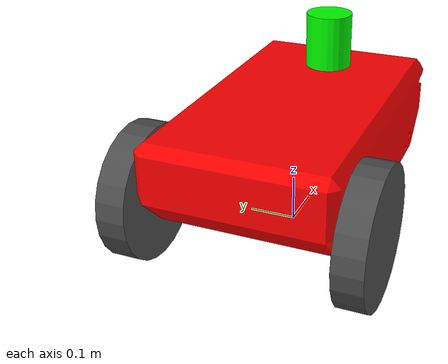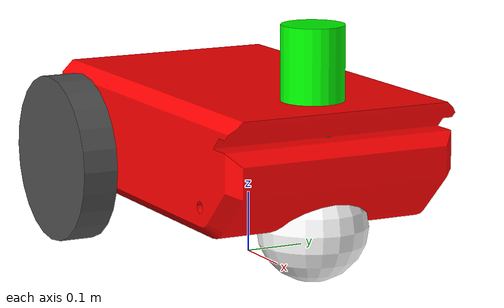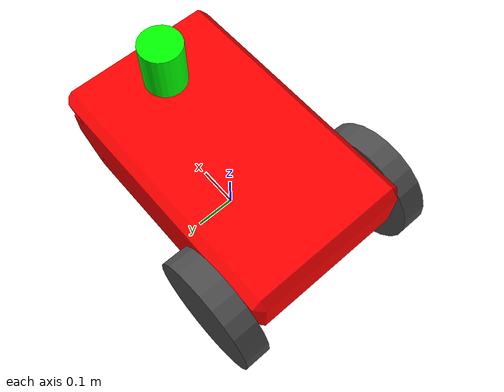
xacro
<?xml version="1.0" ?>
<robot name="twr" xmlns:xacro="http://ros.org/wiki/xacro">

<!-- ****************************************************** Two Wheeled Robot ********************************************************  -->
<!-- Muthanna Alwahash                                                                                                                  -->
<!-- March 2022                                                                                                                         -->

<!-- ****************************************************** Parameters ***************************************************************  -->

  <xacro:property name="mesh_path"    value="package://bots/meshes/twr/"/>

<!-- Define the size of the robot's main chassis in meters                                                                              -->
  <xacro:property name="base_width"   value="0.39"/>
  <xacro:property name="base_length"  value="0.70"/>
  <xacro:property name="base_height"  value="0.20"/>
  <xacro:property name="wheel_radius" value="0.14"/>
  <xacro:property name="wheel_width"  value="0.06"/>
  <xacro:property name="wheel_ygap"   value="0.035"/> <!-- gap between the wheel and chassis along y-axis in meters                     -->
  <xacro:property name="wheel_zoff"   value="0.05" /> <!-- Position the wheels along the z-axis                                         -->
  <xacro:property name="wheel_xoff"   value="0.221"/> <!-- Position the wheels along the x-axis                                         -->
  <xacro:property name="caster_xoff"  value="0.217"/> <!-- Position the caster wheel along the x-axis                                   -->

<!-- ****************************************************** Includes *****************************************************************  -->

  <xacro:include filename="$(find bots)/xacro/common_rviz_materials.xacro" />   <!-- RVIZ Colors                                -->
  <xacro:include filename="$(find bots)/gazebo/gz_twr.xacro" />               <!-- Gazebo                                     -->

<!-- ****************************************************** Macros *******************************************************************  -->
<!-- Define intertial property macros                                                                                                   -->

  <xacro:macro name="box_inertia" params="m w h d">
    <inertial>
      <origin xyz="0 0 0" rpy="${pi/2} 0 ${pi/2}"/>
      <mass value="${m}"/>
      <inertia ixx="${(m/12) * (h*h + d*d)}" ixy="0.0" ixz="0.0" iyy="${(m/12) * (w*w + d*d)}" iyz="0.0" izz="${(m/12) * (w*w + h*h)}"/>
    </inertial>
  </xacro:macro>

  <xacro:macro name="cylinder_inertia" params="m r h">
    <inertial>
      <origin xyz="0 0 0" rpy="${pi/2} 0 0" />
      <mass value="${m}"/>
      <inertia ixx="${(m/12) * (3*r*r + h*h)}" ixy = "0" ixz = "0" iyy="${(m/12) * (3*r*r + h*h)}" iyz = "0" izz="${(m/2) * (r*r)}"/>
    </inertial>
  </xacro:macro>

  <xacro:macro name="sphere_inertia" params="m r">
    <inertial>
      <mass value="${m}"/>
      <inertia ixx="${(2/5) * m * (r*r)}" ixy="0.0" ixz="0.0" iyy="${(2/5) * m * (r*r)}" iyz="0.0" izz="${(2/5) * m * (r*r)}"/>
    </inertial>
  </xacro:macro>

<!-- ****************************************************** Base Footprint Link ******************************************************  -->
<!-- Define the center of the main robot chassis projected on the ground                                                                -->

  <link name="base_footprint"/>

<!-- ****************************************************** Base Footprint Joint *****************************************************  -->
<!-- The base footprint of the robot is located underneath the chassis                                                                  -->

  <joint name="base_joint" type="fixed">
    <parent link="base_footprint"/>
    <child link="base_link" />
    <origin xyz="0.0 0.0 ${(wheel_radius+wheel_zoff)}" rpy="0 0 0"/>
  </joint>

<!-- ****************************************************** Base Link ****************************************************************  -->

  <link name="base_link">
    <visual>
      <origin xyz="0 0 0" rpy="0 0 0"/>
      <geometry>
        <mesh filename="${mesh_path}robot_base.stl" />
      </geometry>
      <material name="red"/>
    </visual>
    <collision>
      <geometry>
        <box size="${base_length} ${base_width} ${base_height}"/>
      </geometry>
    </collision>

    <xacro:box_inertia m="40.0" w="${base_width}" d="${base_length}" h="${base_height}"/>

  </link>

<!-- ****************************************************** Drive Wheels Link Macro **************************************************  -->

  <xacro:macro name="wheel" params="prefix x_reflect y_reflect">

    <link name="${prefix}_link">
      <visual>
        <origin xyz="0 0 0" rpy="${radians(90)} 0 0"/>
        <geometry>
            <cylinder radius="${wheel_radius}" length="${wheel_width}"/>
        </geometry>
        <material name="black"/>
      </visual>
      <collision>
        <origin xyz="0 0 0" rpy="${radians(90)} 0 0"/>
        <geometry>
          <cylinder radius="${wheel_radius}" length="${wheel_width}"/>
        </geometry>
      </collision>
        <xacro:cylinder_inertia m="110.5" r="${wheel_radius}" h="${wheel_width}"/>
    </link>

<!-- ****************************************************** Drive Wheels Joint Macro *************************************************  -->
<!-- Connect the wheels to the base_link at the appropriate location, and define a continuous joint to allow the wheels to freely       -->
<!-- rotate about an axis                                                                                                               -->

    <joint name="${prefix}_joint" type="revolute">
      <parent link="base_link"/>
      <child link="${prefix}_link"/>
      <origin xyz="${x_reflect*wheel_xoff} ${y_reflect*(base_width/2+wheel_ygap)} ${-wheel_zoff}" rpy="0 0 0"/>
      <limit upper="${radians(180)}" lower="-${radians(180)}" effort="30" velocity="5.0"/>
      <axis xyz="0 1 0"/>
    </joint>

<!-- ****************************************************** End of Macro *************************************************************  -->

  </xacro:macro>

<!-- ****************************************************** Drive Wheels Link and Joint **********************************************  -->
<!-- Instantiate two wheels using the macro we just made through the xacro:wheel tags. We also define the parameters to have one        -->
<!-- wheel on both sides at the back of our robot (i.e. x_reflect=-1).                                                                  -->

  <xacro:wheel prefix="drivewhl_l" x_reflect="-1" y_reflect="1" />
  <xacro:wheel prefix="drivewhl_r" x_reflect="-1" y_reflect="-1" />

<!-- ****************************************************** Front Caster Link ********************************************************  -->
<!-- We add a caster wheel. It will be modeled as sphere. We define the wheel’s geometry, material and the joint to connect it to       -->
<!-- base_link at the appropriate location.                                                                                             -->

  <link name="front_caster">
    <visual>
      <geometry>
        <sphere radius="${(wheel_radius+wheel_zoff-(base_height/2))}"/>
      </geometry>
      <material name="white"/>
    </visual>
    <collision>
      <origin xyz="0 0 0" rpy="0 0 0"/>
      <geometry>
        <sphere radius="${(wheel_radius+wheel_zoff-(base_height/2))}"/>
      </geometry>
    </collision>
    <xacro:sphere_inertia m="10.05" r="${(wheel_radius+wheel_zoff-(base_height/2))}"/>
  </link>

<!-- **************************************************** Front Caster Joint *********************************************************  -->

  <joint name="caster_joint" type="fixed">
    <parent link="base_link"/>
    <child link="front_caster"/>
    <origin xyz="${caster_xoff} 0.0 ${-(base_height/2)}" rpy="0 0 0"/>
  </joint>

<!-- ****************************************************** IMU Joint ****************************************************************  -->
<!-- Each sensor must be attached to a link.                                                                                            -->

  <joint name="imu_joint" type="fixed">
    <parent link="base_link"/>
    <child link="imu_link"/>
    <origin xyz="-0.10 0 0.05" rpy="0 0 0"/>
  </joint>

<!-- ****************************************************** IMU Link *****************************************************************  -->

  <link name="imu_link"/>

<!-- ****************************************************** LIDAR Joint **************************************************************  -->

  <joint name="lidar_joint" type="fixed">
    <parent link="base_link"/>
    <child link="lidar_link"/>
    <origin xyz="0.215 0 0.13" rpy="0 0 0"/>
  </joint>

<!-- ****************************************************** LIDAR Link ***************************************************************  -->

  <link name="lidar_link">
      <collision>
      <origin xyz="0 0 0" rpy="0 0 0"/>
      <geometry>
        <cylinder radius="0.0508" length="0.18"/>
      </geometry>
      </collision>
    <visual>
      <origin xyz="0 0 0" rpy="0 0 0"/>
      <geometry>
        <cylinder radius="0.0508" length="0.18"/>
      </geometry>
      <material name="green"/>
    </visual>
    <inertial>
      <mass value="0.114" />
      <origin xyz="0 0 0" rpy="0 0 0"/>
      <inertia ixx="0.001" ixy="0" ixz="0" iyy="0.001" iyz="0" izz="0.001" />
    </inertial>
  </link>

</robot>

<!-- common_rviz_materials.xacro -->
<!-- ****************************************************** RVIZ Colors **************************************************************  -->
<!-- Muthanna Alwahash                                                                                                                  -->
<!-- March 2022                                                                                                                         -->

<robot>

  <material name="red">
    <color rgba="1.0 0.0 0.0 1.0"/>
  </material>

  <material name="green">
    <color rgba="0.0 1.0 0.0 1.0"/>
  </material>

  <material name="blue">
    <color rgba="0.0 0.0 1.0 1.0"/>
  </material>

  <material name="black">
    <color rgba="0.3 0.3 0.3 1.0"/>
  </material>

  <material name="white">
    <color rgba="1.0 1.0 1.0 1.0"/>
  </material>

  <material name="grey">
    <color rgba="0.2 0.2 0.2 1.0"/>
  </material>

  <material name="orange">
    <color rgba="${255/255} ${108/255} ${10/255} 1.0"/>
  </material>

  <material name="brown">
    <color rgba="${222/255} ${207/255} ${195/255} 1.0"/>
  </material>

  <material name="yellow">
    <color rgba="1.0 1.0 0.0 1.0"/>
  </material>

</robot>
